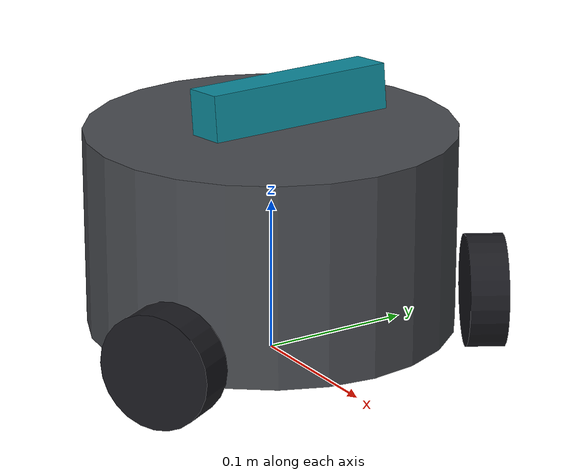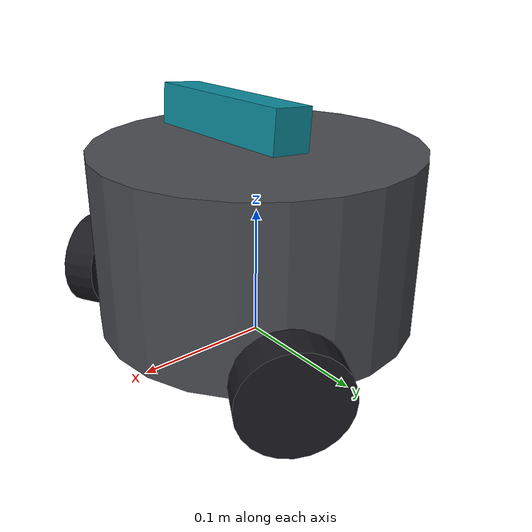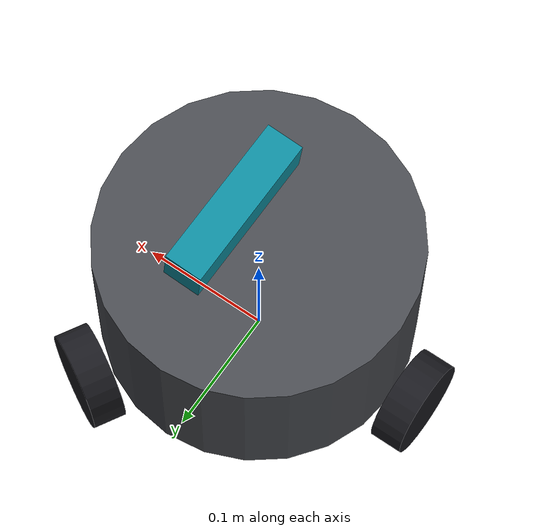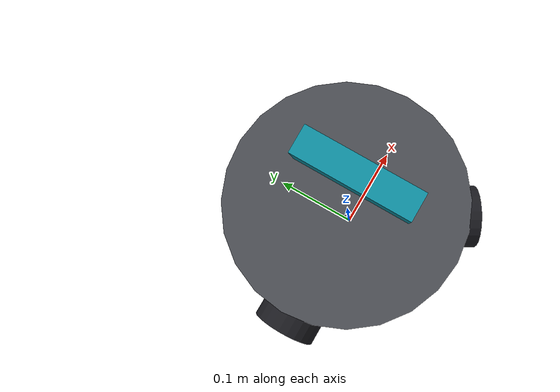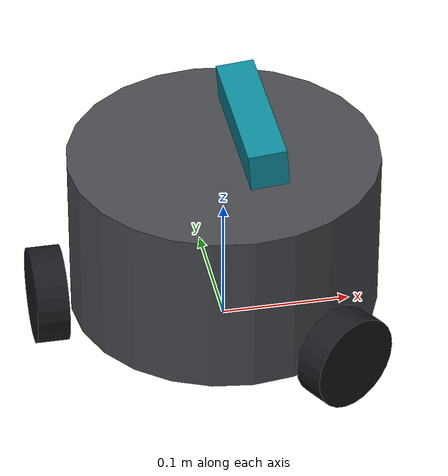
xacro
<?xml version="1.0"?>
<robot xmlns:xacro="http://www.ros.org/wiki/xacro" name="kaya">

  <xacro:property name="wheel_radius"   value="0.037"/>   <!-- MEASURED -->
  <xacro:property name="wheel_width"    value="0.025"/>   <!-- MEASURED -->
  <xacro:property name="chassis_radius" value="0.138"/>   <!-- CALIBRATED 2026-09-03, was 0.143 -->

  <xacro:property name="deck_radius"      value="0.1195"/> <!-- CAD, outline ESTIMATED -->
  <xacro:property name="footprint_radius" value="0.160"/>  <!-- DERIVED, encloses the wheels -->

  <!-- Chassis envelope from CAD: retainer underside 20 mm above the floor
       to shell ridge 150.45 mm. 130 mm tall, centred 85 mm up, so 48 mm
       above base_link. -->
  <xacro:property name="chassis_height" value="0.130"/>
  <xacro:property name="chassis_z"      value="0.048"/>

  <xacro:property name="camera_x" value="0.02181"/>       <!-- DERIVED from the shell -->
  <xacro:property name="camera_y" value="0.000"/>         <!-- MEASURED -->
  <xacro:property name="camera_z" value="${0.17372 - wheel_radius}"/>  <!-- DERIVED, see note -->
  <xacro:property name="camera_pitch" value="-0.0853"/>   <!-- MEASURED (IMU), nose UP -->
  <xacro:property name="camera_roll"  value="0.0164"/>    <!-- MEASURED (IMU) -->

  <!-- Gemini 335L from Orbbec's STEP. Robot axes: X = depth (optical),
       Y = the 95 mm stereo baseline, Z = height. -->
  <xacro:property name="camera_box_x" value="0.0293"/>
  <xacro:property name="camera_box_y" value="0.1241"/>
  <xacro:property name="camera_box_z" value="0.0291"/>

  <xacro:property name="total_mass" value="2.088"/>       <!-- MEASURED -->
  <xacro:property name="wheel_mass" value="0.112"/>       <!-- MEASURED -->

  <xacro:property name="base_mass"  value="1.588"/>       <!-- = 2.088 - 3*wheel - camera -->
  <xacro:property name="base_com_z" value="0.05225"/>     <!-- 89.3 mm above the floor -->

  <xacro:property name="base_ixx" value="5.7879e-03"/>
  <xacro:property name="base_iyy" value="6.3183e-03"/>
  <xacro:property name="base_izz" value="7.4579e-03"/>
  <xacro:property name="base_ixz" value="-1.7872e-04"/>

  <!-- CAD distribution, scaled by 112/58.45 to the measured wheel mass -->
  <xacro:property name="wheel_ixx" value="7.1080e-05"/>   <!-- polar, spin axis -->
  <xacro:property name="wheel_iyy" value="4.3294e-05"/>   <!-- transverse -->
  <xacro:property name="wheel_izz" value="4.3294e-05"/>   <!-- transverse -->

  <material name="grey">  <color rgba="0.28 0.29 0.31 1.0"/></material>
  <material name="black"> <color rgba="0.10 0.10 0.12 1.0"/></material>
  <material name="teal">  <color rgba="0.05 0.55 0.62 1.0"/></material>

  <link name="base_footprint"/>

  <link name="base_link">
    <visual>
      <origin xyz="0 0 ${chassis_z}" rpy="0 0 0"/>
      <geometry><cylinder radius="${deck_radius}" length="${chassis_height}"/></geometry>
      <material name="grey"/>
    </visual>
    <collision>
      <origin xyz="0 0 ${chassis_z}" rpy="0 0 0"/>
      <geometry><cylinder radius="${deck_radius}" length="${chassis_height}"/></geometry>
    </collision>
    <inertial>
      <origin xyz="0 0 ${base_com_z}" rpy="0 0 0"/>
      <mass value="${base_mass}"/>
      <inertia ixx="${base_ixx}" iyy="${base_iyy}" izz="${base_izz}"
               ixy="0" ixz="${base_ixz}" iyz="0"/>
    </inertial>
  </link>

  <joint name="base_footprint_joint" type="fixed">
    <parent link="base_footprint"/><child link="base_link"/>
    <origin xyz="0 0 ${wheel_radius}" rpy="0 0 0"/>
  </joint>

  <xacro:macro name="omni_wheel" params="name theta">
    <link name="${name}_wheel_link">
      <visual>
        <origin xyz="0 0 0" rpy="0 ${pi/2} 0"/>
        <geometry><cylinder radius="${wheel_radius}" length="${wheel_width}"/></geometry>
        <material name="black"/>
      </visual>
      <collision>
        <!-- Keep this a CYLINDER even after the roller mesh is exported.
             Omni behaviour comes from anisotropic friction, not from
             simulating twelve free rollers. -->
        <origin xyz="0 0 0" rpy="0 ${pi/2} 0"/>
        <geometry><cylinder radius="${wheel_radius}" length="${wheel_width}"/></geometry>
      </collision>
      <inertial>
        <mass value="${wheel_mass}"/>
        <!-- FIXED: the pre-CAD revision put the polar moment on iyy while
             declaring the spin axis as X. -->
        <inertia ixx="${wheel_ixx}" iyy="${wheel_iyy}" izz="${wheel_izz}"
                 ixy="0" ixz="0" iyz="0"/>
      </inertial>
    </link>
    <joint name="${name}_wheel_joint" type="continuous">
      <parent link="base_link"/><child link="${name}_wheel_link"/>
      <origin xyz="${chassis_radius*cos(theta)} ${chassis_radius*sin(theta)} 0"
              rpy="0 0 ${theta}"/>
      <axis xyz="1 0 0"/>
    </joint>
  </xacro:macro>

  <xacro:omni_wheel name="wheel_1" theta="${5*pi/3}"/>    <!-- 300 deg, front-right, servo id 1 -->
  <xacro:omni_wheel name="wheel_2" theta="${pi/3}"/>      <!-- 60 deg, front-left, servo id 2 -->
  <xacro:omni_wheel name="wheel_3" theta="${pi}"/>        <!-- 180 deg, rear, servo id 3 -->

  <xacro:property name="camera_link_x" value="0.02399"/>
  <xacro:property name="camera_link_y" value="0.04748"/>
  <xacro:property name="camera_link_z" value="${0.17524 - wheel_radius}"/>
  <link name="camera_link">
    <visual>
      <origin xyz="-0.0023 -0.0475 -0.00055" rpy="0 0 0"/>
      <geometry><box size="${camera_box_x} ${camera_box_y} ${camera_box_z}"/></geometry>
      <material name="teal"/>
    </visual>
    <collision>
      <origin xyz="-0.0023 -0.0475 -0.00055" rpy="0 0 0"/>
      <geometry><box size="${camera_box_x} ${camera_box_y} ${camera_box_z}"/></geometry>
    </collision>
  </link>
  <joint name="camera_mount_joint" type="fixed">
    <parent link="base_link"/><child link="camera_link"/>
    <origin xyz="${camera_link_x} ${camera_link_y} ${camera_link_z}"
            rpy="${camera_roll} ${camera_pitch} 0"/>
  </joint>

</robot>
